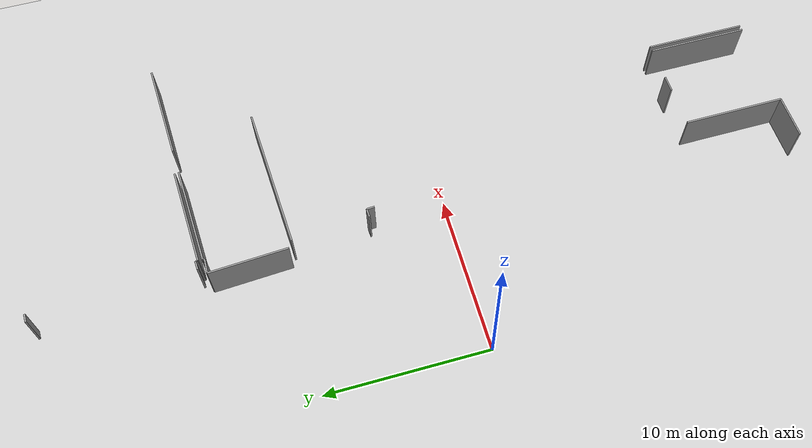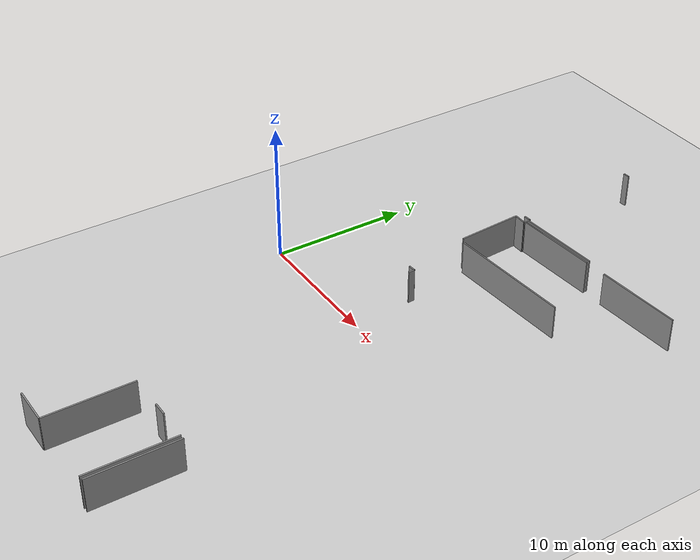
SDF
<sdf version="1.6">
 <world name="default">
  <model name="ground_plane">
   <static>1</static>
   <link name="link">
    <collision name="collision">
     <geometry><plane><normal>0 0 1</normal><size>100 100</size></plane></geometry>
     <surface><friction><ode><mu>100</mu><mu2>50</mu2></ode></friction></surface>
    </collision>
    <visual name="visual">
     <cast_shadows>0</cast_shadows>
     <geometry><plane><normal>0 0 1</normal><size>100 100</size></plane></geometry>
     <material>
      <script><uri>file://media/materials/scripts/gazebo.material</uri><name>Gazebo/Grey</name></script>
     </material>
    </visual>
   </link>
  </model>
  <model name="50025631">
   <static>1</static>
   <link name="Wall_52">
    <collision name="Wall_52_Collision">
     <geometry><box><size>6.1954785446 0.1 2.5</size></box></geometry>
     <pose>3.0977392723 0 1.25 0 0 0</pose>
    </collision>
    <visual name="Wall_52_Visual">
     <pose>3.0977392723 0 1.25 0 0 0</pose>
     <geometry><box><size>6.1954785446 0.1 2.5</size></box></geometry>
     <material>
      <script><uri>file://media/materials/scripts/gazebo.material</uri><name>Gazebo/Grey</name></script>
      <ambient>1 1 1 1</ambient>
     </material>
    </visual>
    <pose>71.0123005214 -33.1963320696 0 0 0 -3.08288859376</pose>
   </link>
   <link name="Wall_53">
    <collision name="Wall_53_Collision">
     <geometry><box><size>0.142754630953 0.1 2.5</size></box></geometry>
     <pose>0.0713773154763 0 1.25 0 0 0</pose>
    </collision>
    <visual name="Wall_53_Visual">
     <pose>0.0713773154763 0 1.25 0 0 0</pose>
     <geometry><box><size>0.142754630953 0.1 2.5</size></box></geometry>
     <material>
      <script><uri>file://media/materials/scripts/gazebo.material</uri><name>Gazebo/Grey</name></script>
      <ambient>1 1 1 1</ambient>
     </material>
    </visual>
    <pose>64.8274942371 -33.5598229538 0 0 0 1.57079632679</pose>
   </link>
   <link name="Wall_54">
    <collision name="Wall_54_Collision">
     <geometry><box><size>0.517790840301 0.1 2.5</size></box></geometry>
     <pose>0.258895420151 0 1.25 0 0 0</pose>
    </collision>
    <visual name="Wall_54_Visual">
     <pose>0.258895420151 0 1.25 0 0 0</pose>
     <geometry><box><size>0.517790840301 0.1 2.5</size></box></geometry>
     <material>
      <script><uri>file://media/materials/scripts/gazebo.material</uri><name>Gazebo/Grey</name></script>
      <ambient>1 1 1 1</ambient>
     </material>
    </visual>
    <pose>64.8274942371 -33.4170683228 0 0 0 -3.0718754849</pose>
   </link>
   <link name="Wall_55">
    <collision name="Wall_55_Collision">
     <geometry><box><size>0.494940816789 0.1 2.5</size></box></geometry>
     <pose>0.247470408395 0 1.25 0 0 0</pose>
    </collision>
    <visual name="Wall_55_Visual">
     <pose>0.247470408395 0 1.25 0 0 0</pose>
     <geometry><box><size>0.494940816789 0.1 2.5</size></box></geometry>
     <material>
      <script><uri>file://media/materials/scripts/gazebo.material</uri><name>Gazebo/Grey</name></script>
      <ambient>1 1 1 1</ambient>
     </material>
    </visual>
    <pose>63.7183517174 -23.7422669283 0 0 0 0.0554558030509</pose>
   </link>
   <link name="Wall_152">
    <collision name="Wall_152_Collision">
     <geometry><box><size>4.827338568 0.1 2.5</size></box></geometry>
     <pose>2.413669284 0 1.25 0 0 0</pose>
    </collision>
    <visual name="Wall_152_Visual">
     <pose>2.413669284 0 1.25 0 0 0</pose>
     <geometry><box><size>4.827338568 0.1 2.5</size></box></geometry>
     <material>
      <script><uri>file://media/materials/scripts/gazebo.material</uri><name>Gazebo/Grey</name></script>
      <ambient>1 1 1 1</ambient>
     </material>
    </visual>
    <pose>64.2107535895 -38.755888311 0 0 0 1.63139837732</pose>
   </link>
   <link name="Wall_153">
    <collision name="Wall_153_Collision">
     <geometry><box><size>0.935436007071 0.1 2.5</size></box></geometry>
     <pose>0.467718003536 0 1.25 0 0 0</pose>
    </collision>
    <visual name="Wall_153_Visual">
     <pose>0.467718003536 0 1.25 0 0 0</pose>
     <geometry><box><size>0.935436007071 0.1 2.5</size></box></geometry>
     <material>
      <script><uri>file://media/materials/scripts/gazebo.material</uri><name>Gazebo/Grey</name></script>
      <ambient>1 1 1 1</ambient>
     </material>
    </visual>
    <pose>63.918386009 -33.9374114928 0 0 0 -0.00896106359484</pose>
   </link>
   <link name="Wall_154">
    <collision name="Wall_154_Collision">
     <geometry><box><size>0.108590044008 0.1 2.5</size></box></geometry>
     <pose>0.0542950220038 0 1.25 0 0 0</pose>
    </collision>
    <visual name="Wall_154_Visual">
     <pose>0.0542950220038 0 1.25 0 0 0</pose>
     <geometry><box><size>0.108590044008 0.1 2.5</size></box></geometry>
     <material>
      <script><uri>file://media/materials/scripts/gazebo.material</uri><name>Gazebo/Grey</name></script>
      <ambient>1 1 1 1</ambient>
     </material>
    </visual>
    <pose>64.8537844583 -33.9457938821 0 0 0 1.57079632679</pose>
   </link>
   <link name="Wall_155">
    <collision name="Wall_155_Collision">
     <geometry><box><size>6.2084443976 0.1 2.5</size></box></geometry>
     <pose>3.1042221988 0 1.25 0 0 0</pose>
    </collision>
    <visual name="Wall_155_Visual">
     <pose>3.1042221988 0 1.25 0 0 0</pose>
     <geometry><box><size>6.2084443976 0.1 2.5</size></box></geometry>
     <material>
      <script><uri>file://media/materials/scripts/gazebo.material</uri><name>Gazebo/Grey</name></script>
      <ambient>1 1 1 1</ambient>
     </material>
    </visual>
    <pose>64.8537844583 -33.8372038381 0 0 0 0.0623932885937</pose>
   </link>
   <link name="Wall_156">
    <collision name="Wall_156_Collision">
     <geometry><box><size>6.26225145481 0.1 2.5</size></box></geometry>
     <pose>3.13112572741 0 1.25 0 0 0</pose>
    </collision>
    <visual name="Wall_156_Visual">
     <pose>3.13112572741 0 1.25 0 0 0</pose>
     <geometry><box><size>6.26225145481 0.1 2.5</size></box></geometry>
     <material>
      <script><uri>file://media/materials/scripts/gazebo.material</uri><name>Gazebo/Grey</name></script>
      <ambient>1 1 1 1</ambient>
     </material>
    </visual>
    <pose>72.6689654734 -33.3510252551 0 0 0 0.0593370075052</pose>
   </link>
   <link name="Wall_169">
    <collision name="Wall_169_Collision">
     <geometry><box><size>0.471439226699 0.1 2.5</size></box></geometry>
     <pose>0.23571961335 0 1.25 0 0 0</pose>
    </collision>
    <visual name="Wall_169_Visual">
     <pose>0.23571961335 0 1.25 0 0 0</pose>
     <geometry><box><size>0.471439226699 0.1 2.5</size></box></geometry>
     <material>
      <script><uri>file://media/materials/scripts/gazebo.material</uri><name>Gazebo/Grey</name></script>
      <ambient>1 1 1 1</ambient>
     </material>
    </visual>
    <pose>65.4979583802 -44.1659586088 0 0 0 1.63198839097</pose>
   </link>
   <link name="Wall_170">
    <collision name="Wall_170_Collision">
     <geometry><box><size>0.548154121967 0.1 2.5</size></box></geometry>
     <pose>0.274077060983 0 1.25 0 0 0</pose>
    </collision>
    <visual name="Wall_170_Visual">
     <pose>0.274077060983 0 1.25 0 0 0</pose>
     <geometry><box><size>0.548154121967 0.1 2.5</size></box></geometry>
     <material>
      <script><uri>file://media/materials/scripts/gazebo.material</uri><name>Gazebo/Grey</name></script>
      <ambient>1 1 1 1</ambient>
     </material>
    </visual>
    <pose>65.469128041 -43.6954017514 0 0 0 -3.08897305874</pose>
   </link>
   <link name="Wall_171">
    <collision name="Wall_171_Collision">
     <geometry><box><size>9.1953649941 0.1 2.5</size></box></geometry>
     <pose>4.59768249705 0 1.25 0 0 0</pose>
    </collision>
    <visual name="Wall_171_Visual">
     <pose>4.59768249705 0 1.25 0 0 0</pose>
     <geometry><box><size>9.1953649941 0.1 2.5</size></box></geometry>
     <material>
      <script><uri>file://media/materials/scripts/gazebo.material</uri><name>Gazebo/Grey</name></script>
      <ambient>1 1 1 1</ambient>
     </material>
    </visual>
    <pose>64.6433356829 -38.9992316143 0 0 0 0.0613220367424</pose>
   </link>
   <link name="Wall_510">
    <collision name="Wall_510_Collision">
     <geometry><box><size>6.31447930756 0.1 2.5</size></box></geometry>
     <pose>3.15723965378 0 1.25 0 0 0</pose>
    </collision>
    <visual name="Wall_510_Visual">
     <pose>3.15723965378 0 1.25 0 0 0</pose>
     <geometry><box><size>6.31447930756 0.1 2.5</size></box></geometry>
     <material>
      <script><uri>file://media/materials/scripts/gazebo.material</uri><name>Gazebo/Grey</name></script>
      <ambient>1 1 1 1</ambient>
     </material>
    </visual>
    <pose>72.079785106 -70.5915680783 0 0 0 1.57079632679</pose>
   </link>
   <link name="Wall_516">
    <collision name="Wall_516_Collision">
     <geometry><box><size>1.0361141275 0.1 2.5</size></box></geometry>
     <pose>0.518057063751 0 1.25 0 0 0</pose>
    </collision>
    <visual name="Wall_516_Visual">
     <pose>0.518057063751 0 1.25 0 0 0</pose>
     <geometry><box><size>1.0361141275 0.1 2.5</size></box></geometry>
     <material>
      <script><uri>file://media/materials/scripts/gazebo.material</uri><name>Gazebo/Grey</name></script>
      <ambient>1 1 1 1</ambient>
     </material>
    </visual>
    <pose>68.517523639 -64.2916944492 0 0 0 0.0</pose>
   </link>
   <link name="Wall_517">
    <collision name="Wall_517_Collision">
     <geometry><box><size>6.32222850954 0.1 2.5</size></box></geometry>
     <pose>3.16111425477 0 1.25 0 0 0</pose>
    </collision>
    <visual name="Wall_517_Visual">
     <pose>3.16111425477 0 1.25 0 0 0</pose>
     <geometry><box><size>6.32222850954 0.1 2.5</size></box></geometry>
     <material>
      <script><uri>file://media/materials/scripts/gazebo.material</uri><name>Gazebo/Grey</name></script>
      <ambient>1 1 1 1</ambient>
     </material>
    </visual>
    <pose>71.7643024518 -64.2916944492 0 0 0 -1.57155970076</pose>
   </link>
   <link name="Wall_518">
    <collision name="Wall_518_Collision">
     <geometry><box><size>2.71779924177 0.1 2.5</size></box></geometry>
     <pose>1.35889962089 0 1.25 0 0 0</pose>
    </collision>
    <visual name="Wall_518_Visual">
     <pose>1.35889962089 0 1.25 0 0 0</pose>
     <geometry><box><size>2.71779924177 0.1 2.5</size></box></geometry>
     <material>
      <script><uri>file://media/materials/scripts/gazebo.material</uri><name>Gazebo/Grey</name></script>
      <ambient>1 1 1 1</ambient>
     </material>
    </visual>
    <pose>65.9878201342 -70.6042686683 0 0 0 3.14159265359</pose>
   </link>
   <link name="Wall_522">
    <collision name="Wall_522_Collision">
     <geometry><box><size>6.31451324307 0.1 2.5</size></box></geometry>
     <pose>3.15725662153 0 1.25 0 0 0</pose>
    </collision>
    <visual name="Wall_522_Visual">
     <pose>3.15725662153 0 1.25 0 0 0</pose>
     <geometry><box><size>6.31451324307 0.1 2.5</size></box></geometry>
     <material>
      <script><uri>file://media/materials/scripts/gazebo.material</uri><name>Gazebo/Grey</name></script>
      <ambient>1 1 1 1</ambient>
     </material>
    </visual>
    <pose>65.9671181726 -64.2897893607 0 0 0 -1.56751784785</pose>
   </link>
   <pose>-55.9 48.5496043766 0 0 0 0</pose>
  </model>
 </world>
</sdf>
